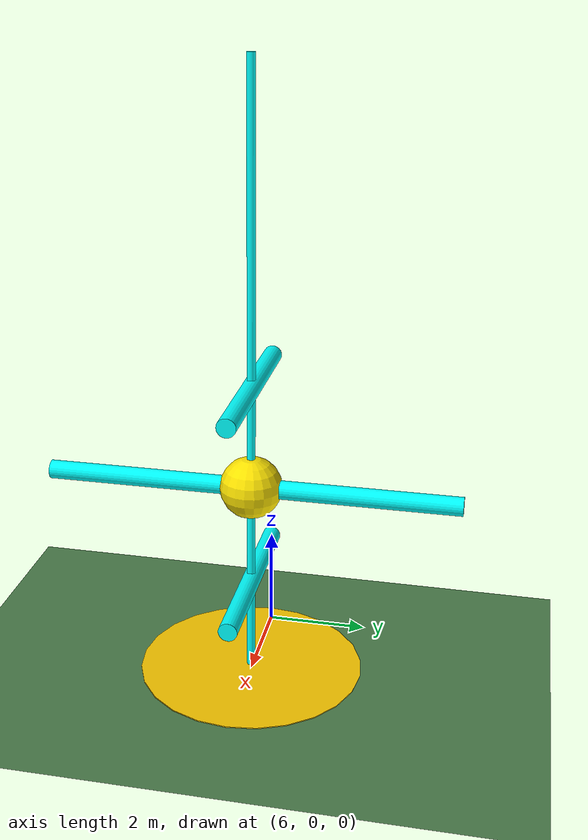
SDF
<sdf version="1.8">
 <world name="phase1_quadcopter_world">
  <gravity>0 0 -9.80665</gravity>
  <physics name="1ms" type="ignored">
   <max_step_size>0.001</max_step_size>
   <real_time_update_rate>1000</real_time_update_rate>
   <real_time_factor>1.0</real_time_factor>
  </physics>
  <scene>
   <ambient>0.4 0.4 0.4 1.0</ambient>
   <background>0.7 0.8 1.0 1.0</background>
   <shadows>true</shadows>
   <grid>true</grid>
  </scene>
  <plugin filename="gz-sim-physics-system" name="gz::sim::systems::Physics"/>
  <plugin filename="gz-sim-scene-broadcaster-system" name="gz::sim::systems::SceneBroadcaster"/>
  <plugin filename="gz-sim-user-commands-system" name="gz::sim::systems::UserCommands"/>
  <plugin filename="gz-sim-sensors-system" name="gz::sim::systems::Sensors">
   <render_engine>ogre2</render_engine>
  </plugin>
  <plugin filename="gz-sim-imu-system" name="gz::sim::systems::Imu"/>
  <plugin filename="gz-sim-wind-effects-system" name="gz::sim::systems::WindEffects">
   <horizontal><magnitude>8.5</magnitude><direction>0.7071 0.7071 0</direction></horizontal>
   <vertical><magnitude>1.2</magnitude></vertical>
  </plugin>
  <light type="directional" name="sun">
   <pose>0 0 100 0 0 0</pose>
   <diffuse>0.9 0.9 0.9 1</diffuse>
   <specular>0.3 0.3 0.3 1</specular>
   <attenuation>
    <range>1000</range>
    <constant>0.9</constant>
    <linear>0.01</linear>
    <quadratic>0.001</quadratic>
   </attenuation>
   <direction>-0.5 0.1 -0.9</direction>
  </light>
  <model name="ground_plane">
   <static>true</static>
   <link name="link">
    <collision name="collision">
     <geometry><plane><normal>0 0 1</normal><size>200 200</size></plane></geometry>
    </collision>
    <visual name="visual">
     <geometry><plane><normal>0 0 1</normal><size>200 200</size></plane></geometry>
     <material>
      <ambient>0.3 0.5 0.3 1</ambient>
      <diffuse>0.3 0.5 0.3 1</diffuse>
      <specular>0.1 0.1 0.1 1</specular>
     </material>
    </visual>
   </link>
  </model>
  <model name="ring_target">
   <static>false</static>
   <pose>8.0 0.0 4.0 0 0 0</pose>
   <link name="link">
    <gravity>false</gravity>
    <kinematic>true</kinematic>
    <visual name="vertical_beacon_line">
     <pose>0 0 2.0 0 0 0</pose>
     <geometry><cylinder><radius>0.08</radius><length>12.0</length></cylinder></geometry>
     <material>
      <ambient>0.0 1.0 1.0 1</ambient>
      <diffuse>0.0 1.0 1.0 1</diffuse>
      <emissive>0.0 1.0 1.0 1</emissive>
     </material>
    </visual>
    <visual name="center_beacon">
     <geometry><sphere><radius>0.6</radius></sphere></geometry>
     <material>
      <ambient>1.0 0.9 0.0 1</ambient>
      <diffuse>1.0 0.9 0.0 1</diffuse>
      <emissive>1.0 0.9 0.0 1</emissive>
     </material>
    </visual>
    <visual name="ring_top">
     <pose>0 0 2.0 0 1.5708 0</pose>
     <geometry><cylinder><radius>0.18</radius><length>4.0</length></cylinder></geometry>
     <material>
      <ambient>0.0 1.0 1.0 1</ambient>
      <diffuse>0.0 1.0 1.0 1</diffuse>
      <emissive>0.0 1.0 1.0 1</emissive>
     </material>
    </visual>
    <visual name="ring_bottom">
     <pose>0 0 -2.0 0 1.5708 0</pose>
     <geometry><cylinder><radius>0.18</radius><length>4.0</length></cylinder></geometry>
     <material>
      <ambient>0.0 1.0 1.0 1</ambient>
      <diffuse>0.0 1.0 1.0 1</diffuse>
      <emissive>0.0 1.0 1.0 1</emissive>
     </material>
    </visual>
    <visual name="ring_left">
     <pose>0 2.0 0 1.5708 0 0</pose>
     <geometry><cylinder><radius>0.18</radius><length>4.0</length></cylinder></geometry>
     <material>
      <ambient>0.0 1.0 1.0 1</ambient>
      <diffuse>0.0 1.0 1.0 1</diffuse>
      <emissive>0.0 1.0 1.0 1</emissive>
     </material>
    </visual>
    <visual name="ring_right">
     <pose>0 -2.0 0 1.5708 0 0</pose>
     <geometry><cylinder><radius>0.18</radius><length>4.0</length></cylinder></geometry>
     <material>
      <ambient>0.0 1.0 1.0 1</ambient>
      <diffuse>0.0 1.0 1.0 1</diffuse>
      <emissive>0.0 1.0 1.0 1</emissive>
     </material>
    </visual>
    <visual name="ground_target_ring">
     <pose>0 0 -3.9 0 0 0</pose>
     <geometry><cylinder><radius>2.2</radius><length>0.02</length></cylinder></geometry>
     <material>
      <ambient>1.0 0.8 0.0 1</ambient>
      <diffuse>1.0 0.8 0.0 1</diffuse>
      <emissive>1.0 0.8 0.0 1</emissive>
     </material>
    </visual>
   </link>
  </model>
 </world>
</sdf>
